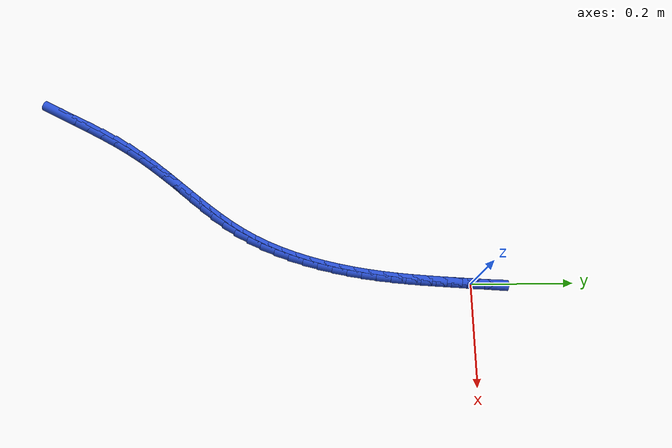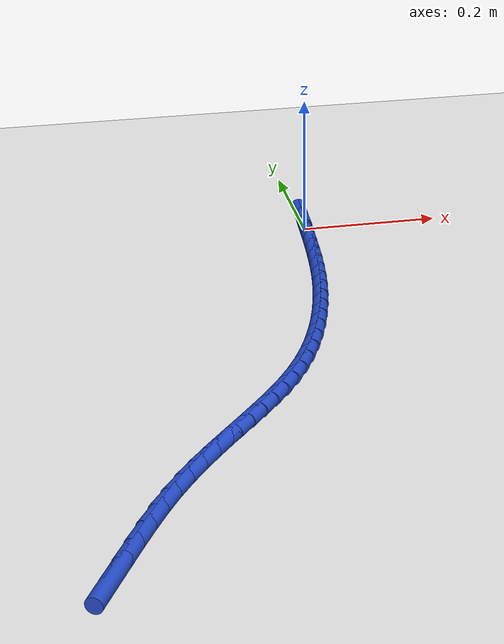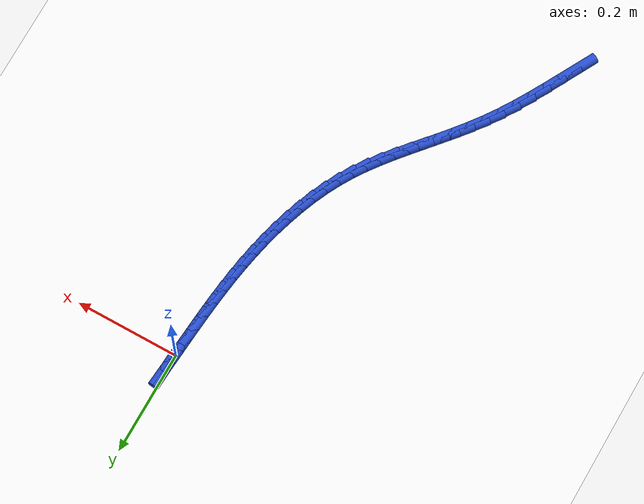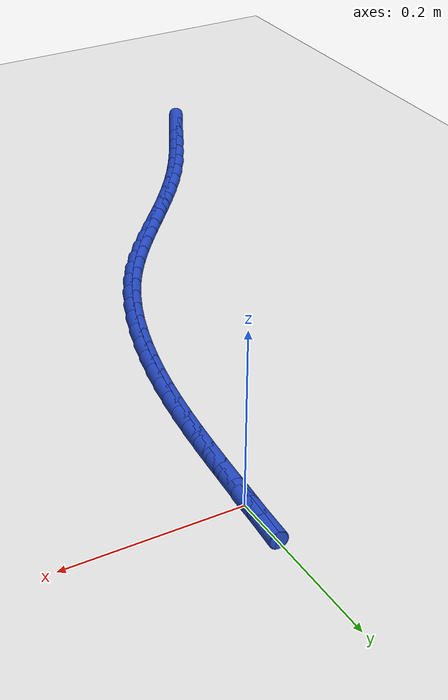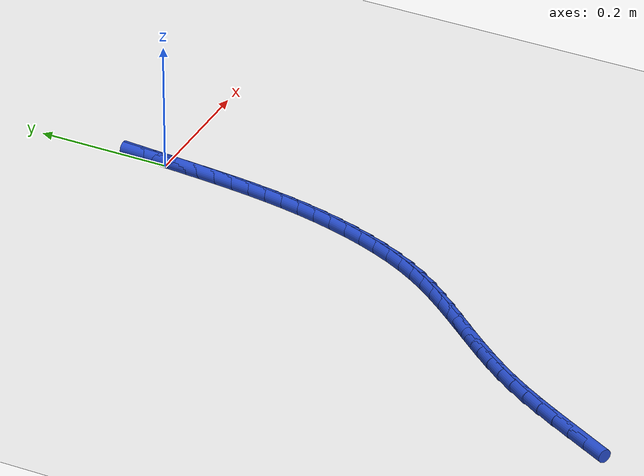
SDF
<sdf version="1.6">
 <world name="default">
  <model name="ground_plane">
   <static>1</static>
   <link name="link">
    <collision name="collision">
     <geometry><plane><normal>0 0 1</normal><size>100 100</size></plane></geometry>
     <surface><friction><ode><mu>100</mu><mu2>50</mu2></ode></friction></surface>
    </collision>
    <visual name="visual">
     <cast_shadows>0</cast_shadows>
     <geometry><plane><normal>0 0 1</normal><size>100 100</size></plane></geometry>
     <material>
      <script><uri>file://media/materials/scripts/gazebo.material</uri><name>Gazebo/WhiteGlow</name></script>
     </material>
    </visual>
   </link>
  </model>
  <model name="line">
   <link name="link_0">
    <pose>3.469446951953614e-18 5.551115123125783e-17 0.01 0 1.57 1.498330290614627</pose>
    <collision name="collision">
     <geometry><cylinder><radius>0.01</radius><length>0.08</length></cylinder></geometry>
    </collision>
    <visual name="visual">
     <material>
      <script><name>Gazebo/Blue</name><uri>file://media/materials/scripts/gazebo.material</uri></script>
     </material>
     <geometry><cylinder><radius>0.01</radius><length>0.08</length></cylinder></geometry>
    </visual>
   </link>
   <link name="link_1">
    <pose>0.0022079323524022247 0.030415160771085865 0.01 0 1.57 1.5155651712762834</pose>
    <collision name="collision">
     <geometry><cylinder><radius>0.01</radius><length>0.08</length></cylinder></geometry>
    </collision>
    <visual name="visual">
     <material>
      <script><name>Gazebo/Blue</name><uri>file://media/materials/scripts/gazebo.material</uri></script>
     </material>
     <geometry><cylinder><radius>0.01</radius><length>0.08</length></cylinder></geometry>
    </visual>
   </link>
   <link name="link_249">
    <pose>-0.3691066035438329 -0.824125573206862 0.01 0 1.57 1.0807454209080034</pose>
    <collision name="collision">
     <geometry><cylinder><radius>0.01</radius><length>0.08</length></cylinder></geometry>
    </collision>
    <visual name="visual">
     <material>
      <script><name>Gazebo/Blue</name><uri>file://media/materials/scripts/gazebo.material</uri></script>
     </material>
     <geometry><cylinder><radius>0.01</radius><length>0.08</length></cylinder></geometry>
    </visual>
   </link>
   <link name="link_250">
    <pose>-0.35312857024812594 -0.7941735114389621 0.01 0 1.57 1.0773993965041233</pose>
    <collision name="collision">
     <geometry><cylinder><radius>0.01</radius><length>0.08</length></cylinder></geometry>
    </collision>
    <visual name="visual">
     <material>
      <script><name>Gazebo/Blue</name><uri>file://media/materials/scripts/gazebo.material</uri></script>
     </material>
     <geometry><cylinder><radius>0.01</radius><length>0.08</length></cylinder></geometry>
    </visual>
   </link>
   <link name="link_251">
    <pose>-0.33707254606856885 -0.764316250610451 0.01 0 1.57 1.0646506611837145</pose>
    <collision name="collision">
     <geometry><cylinder><radius>0.01</radius><length>0.08</length></cylinder></geometry>
    </collision>
    <visual name="visual">
     <material>
      <script><name>Gazebo/Blue</name><uri>file://media/materials/scripts/gazebo.material</uri></script>
     </material>
     <geometry><cylinder><radius>0.01</radius><length>0.08</length></cylinder></geometry>
    </visual>
   </link>
   <link name="link_252">
    <pose>-0.32078174160454054 -0.7349268740370227 0.01 0 1.57 1.04196075727492</pose>
    <collision name="collision">
     <geometry><cylinder><radius>0.01</radius><length>0.08</length></cylinder></geometry>
    </collision>
    <visual name="visual">
     <material>
      <script><name>Gazebo/Blue</name><uri>file://media/materials/scripts/gazebo.material</uri></script>
     </material>
     <geometry><cylinder><radius>0.01</radius><length>0.08</length></cylinder></geometry>
    </visual>
   </link>
   <link name="link_253">
    <pose>-0.30409936745542143 -0.7063784650343732 0.01 0 1.57 1.0083454379524563</pose>
    <collision name="collision">
     <geometry><cylinder><radius>0.01</radius><length>0.08</length></cylinder></geometry>
    </collision>
    <visual name="visual">
     <material>
      <script><name>Gazebo/Blue</name><uri>file://media/materials/scripts/gazebo.material</uri></script>
     </material>
     <geometry><cylinder><radius>0.01</radius><length>0.08</length></cylinder></geometry>
    </visual>
   </link>
   <link name="link_254">
    <pose>-0.28686863422059056 -0.6790441069181956 0.01 0 1.57 0.9656679933872743</pose>
    <collision name="collision">
     <geometry><cylinder><radius>0.01</radius><length>0.08</length></cylinder></geometry>
    </collision>
    <visual name="visual">
     <material>
      <script><name>Gazebo/Blue</name><uri>file://media/materials/scripts/gazebo.material</uri></script>
     </material>
     <geometry><cylinder><radius>0.01</radius><length>0.08</length></cylinder></geometry>
    </visual>
   </link>
   <link name="link_255">
    <pose>-0.26898879774365825 -0.6531946875765466 0.01 0 1.57 0.9270959126102922</pose>
    <collision name="collision">
     <geometry><cylinder><radius>0.01</radius><length>0.08</length></cylinder></geometry>
    </collision>
    <visual name="visual">
     <material>
      <script><name>Gazebo/Blue</name><uri>file://media/materials/scripts/gazebo.material</uri></script>
     </material>
     <geometry><cylinder><radius>0.01</radius><length>0.08</length></cylinder></geometry>
    </visual>
   </link>
   <link name="link_256">
    <pose>-0.25059220076355393 -0.6286760737334046 0.01 0 1.57 0.8971354246118503</pose>
    <collision name="collision">
     <geometry><cylinder><radius>0.01</radius><length>0.08</length></cylinder></geometry>
    </collision>
    <visual name="visual">
     <material>
      <script><name>Gazebo/Blue</name><uri>file://media/materials/scripts/gazebo.material</uri></script>
     </material>
     <geometry><cylinder><radius>0.01</radius><length>0.08</length></cylinder></geometry>
    </visual>
   </link>
   <link name="link_257">
    <pose>-0.23187177196468983 -0.6052236569655286 0.01 0 1.57 0.8766930430158164</pose>
    <collision name="collision">
     <geometry><cylinder><radius>0.01</radius><length>0.08</length></cylinder></geometry>
    </collision>
    <visual name="visual">
     <material>
      <script><name>Gazebo/Blue</name><uri>file://media/materials/scripts/gazebo.material</uri></script>
     </material>
     <geometry><cylinder><radius>0.01</radius><length>0.08</length></cylinder></geometry>
    </visual>
   </link>
   <link name="link_258">
    <pose>-0.21302044015907862 -0.5825728286170028 0.01 0 1.57 0.8664982805174342</pose>
    <collision name="collision">
     <geometry><cylinder><radius>0.01</radius><length>0.08</length></cylinder></geometry>
    </collision>
    <visual name="visual">
     <material>
      <script><name>Gazebo/Blue</name><uri>file://media/materials/scripts/gazebo.material</uri></script>
     </material>
     <geometry><cylinder><radius>0.01</radius><length>0.08</length></cylinder></geometry>
    </visual>
   </link>
   <link name="link_259">
    <pose>-0.19423113415873342 -0.5604589800319127 0.01 0 1.57 0.8671242843665977</pose>
    <collision name="collision">
     <geometry><cylinder><radius>0.01</radius><length>0.08</length></cylinder></geometry>
    </collision>
    <visual name="visual">
     <material>
      <script><name>Gazebo/Blue</name><uri>file://media/materials/scripts/gazebo.material</uri></script>
     </material>
     <geometry><cylinder><radius>0.01</radius><length>0.08</length></cylinder></geometry>
    </visual>
   </link>
   <link name="link_260">
    <pose>-0.17569678277566703 -0.538617502554343 0.01 0 1.57 0.8789923953412879</pose>
    <collision name="collision">
     <geometry><cylinder><radius>0.01</radius><length>0.08</length></cylinder></geometry>
    </collision>
    <visual name="visual">
     <material>
      <script><name>Gazebo/Blue</name><uri>file://media/materials/scripts/gazebo.material</uri></script>
     </material>
     <geometry><cylinder><radius>0.01</radius><length>0.08</length></cylinder></geometry>
    </visual>
   </link>
   <link name="link_261">
    <pose>-0.1576103148218918 -0.516783787528378 0.01 0 1.57 0.9023468856544906</pose>
    <collision name="collision">
     <geometry><cylinder><radius>0.01</radius><length>0.08</length></cylinder></geometry>
    </collision>
    <visual name="visual">
     <material>
      <script><name>Gazebo/Blue</name><uri>file://media/materials/scripts/gazebo.material</uri></script>
     </material>
     <geometry><cylinder><radius>0.01</radius><length>0.08</length></cylinder></geometry>
    </visual>
   </link>
   <link name="link_262">
    <pose>-0.14016465910942186 -0.49469322629810375 0.01 0 1.57 0.9371919004678997</pose>
    <collision name="collision">
     <geometry><cylinder><radius>0.01</radius><length>0.08</length></cylinder></geometry>
    </collision>
    <visual name="visual">
     <material>
      <script><name>Gazebo/Blue</name><uri>file://media/materials/scripts/gazebo.material</uri></script>
     </material>
     <geometry><cylinder><radius>0.01</radius><length>0.08</length></cylinder></geometry>
    </visual>
   </link>
   <link name="link_263">
    <pose>-0.12355274445026954 -0.47208121020760474 0.01 0 1.57 0.9831925289295875</pose>
    <collision name="collision">
     <geometry><cylinder><radius>0.01</radius><length>0.08</length></cylinder></geometry>
    </collision>
    <visual name="visual">
     <material>
      <script><name>Gazebo/Blue</name><uri>file://media/materials/scripts/gazebo.material</uri></script>
     </material>
     <geometry><cylinder><radius>0.01</radius><length>0.08</length></cylinder></geometry>
    </visual>
   </link>
   <link name="link_264">
    <pose>-0.1079674996564477 -0.44868313060096565 0.01 0 1.57 1.0394065361934934</pose>
    <collision name="collision">
     <geometry><cylinder><radius>0.01</radius><length>0.08</length></cylinder></geometry>
    </collision>
    <visual name="visual">
     <material>
      <script><name>Gazebo/Blue</name><uri>file://media/materials/scripts/gazebo.material</uri></script>
     </material>
     <geometry><cylinder><radius>0.01</radius><length>0.08</length></cylinder></geometry>
    </visual>
   </link>
   <link name="link_265">
    <pose>-0.09359943466243048 -0.4242387261722327 0.01 0 1.57 1.0985594454675653</pose>
    <collision name="collision">
     <geometry><cylinder><radius>0.01</radius><length>0.08</length></cylinder></geometry>
    </collision>
    <visual name="visual">
     <material>
      <script><name>Gazebo/Blue</name><uri>file://media/materials/scripts/gazebo.material</uri></script>
     </material>
     <geometry><cylinder><radius>0.01</radius><length>0.08</length></cylinder></geometry>
    </visual>
   </link>
   <link name="link_266">
    <pose>-0.08053853999312464 -0.39866839505117363 0.01 0 1.57 1.1524078998240437</pose>
    <collision name="collision">
     <geometry><cylinder><radius>0.01</radius><length>0.08</length></cylinder></geometry>
    </collision>
    <visual name="visual">
     <material>
      <script><name>Gazebo/Blue</name><uri>file://media/materials/scripts/gazebo.material</uri></script>
     </material>
     <geometry><cylinder><radius>0.01</radius><length>0.08</length></cylinder></geometry>
    </visual>
   </link>
   <link name="link_267">
    <pose>-0.06874034688944712 -0.3721341935555408 0.01 0 1.57 1.2010108530520782</pose>
    <collision name="collision">
     <geometry><cylinder><radius>0.01</radius><length>0.08</length></cylinder></geometry>
    </collision>
    <visual name="visual">
     <material>
      <script><name>Gazebo/Blue</name><uri>file://media/materials/scripts/gazebo.material</uri></script>
     </material>
     <geometry><cylinder><radius>0.01</radius><length>0.08</length></cylinder></geometry>
    </visual>
   </link>
   <link name="link_268">
    <pose>-0.05815099914898497 -0.34481504967217164 0.01 0 1.57 1.244991314086547</pose>
    <collision name="collision">
     <geometry><cylinder><radius>0.01</radius><length>0.08</length></cylinder></geometry>
    </collision>
    <visual name="visual">
     <material>
      <script><name>Gazebo/Blue</name><uri>file://media/materials/scripts/gazebo.material</uri></script>
     </material>
     <geometry><cylinder><radius>0.01</radius><length>0.08</length></cylinder></geometry>
    </visual>
   </link>
   <link name="link_269">
    <pose>-0.04871664056932526 -0.31688989138790324 0.01 0 1.57 1.284928952946745</pose>
    <collision name="collision">
     <geometry><cylinder><radius>0.01</radius><length>0.08</length></cylinder></geometry>
    </collision>
    <visual name="visual">
     <material>
      <script><name>Gazebo/Blue</name><uri>file://media/materials/scripts/gazebo.material</uri></script>
     </material>
     <geometry><cylinder><radius>0.01</radius><length>0.08</length></cylinder></geometry>
    </visual>
   </link>
   <link name="link_270">
    <pose>-0.04038341494805479 -0.2885376466895723 0.01 0 1.57 1.3213522218617355</pose>
    <collision name="collision">
     <geometry><cylinder><radius>0.01</radius><length>0.08</length></cylinder></geometry>
    </collision>
    <visual name="visual">
     <material>
      <script><name>Gazebo/Blue</name><uri>file://media/materials/scripts/gazebo.material</uri></script>
     </material>
     <geometry><cylinder><radius>0.01</radius><length>0.08</length></cylinder></geometry>
    </visual>
   </link>
   <link name="link_271">
    <pose>-0.0330974660827611 -0.2599372435640178 0.01 0 1.57 1.3547381718356262</pose>
    <collision name="collision">
     <geometry><cylinder><radius>0.01</radius><length>0.08</length></cylinder></geometry>
    </collision>
    <visual name="visual">
     <material>
      <script><name>Gazebo/Blue</name><uri>file://media/materials/scripts/gazebo.material</uri></script>
     </material>
     <geometry><cylinder><radius>0.01</radius><length>0.08</length></cylinder></geometry>
    </visual>
   </link>
   <link name="link_272">
    <pose>-0.026804937771030966 -0.2312676099980761 0.01 0 1.57 1.3854708675105896</pose>
    <collision name="collision">
     <geometry><cylinder><radius>0.01</radius><length>0.08</length></cylinder></geometry>
    </collision>
    <visual name="visual">
     <material>
      <script><name>Gazebo/Blue</name><uri>file://media/materials/scripts/gazebo.material</uri></script>
     </material>
     <geometry><cylinder><radius>0.01</radius><length>0.08</length></cylinder></geometry>
    </visual>
   </link>
   <link name="link_273">
    <pose>-0.021447735620890942 -0.20269231709049143 0.01 0 1.57 1.4132389379794836</pose>
    <collision name="collision">
     <geometry><cylinder><radius>0.01</radius><length>0.08</length></cylinder></geometry>
    </collision>
    <visual name="visual">
     <material>
      <script><name>Gazebo/Blue</name><uri>file://media/materials/scripts/gazebo.material</uri></script>
     </material>
     <geometry><cylinder><radius>0.01</radius><length>0.08</length></cylinder></geometry>
    </visual>
   </link>
   <link name="link_274">
    <pose>-0.016923150025517097 -0.1742132747278488 0.01 0 1.57 1.437404049007416</pose>
    <collision name="collision">
     <geometry><cylinder><radius>0.01</radius><length>0.08</length></cylinder></geometry>
    </collision>
    <visual name="visual">
     <material>
      <script><name>Gazebo/Blue</name><uri>file://media/materials/scripts/gazebo.material</uri></script>
     </material>
     <geometry><cylinder><radius>0.01</radius><length>0.08</length></cylinder></geometry>
    </visual>
   </link>
   <link name="link_275">
    <pose>-0.013101753352967267 -0.14573558124171546 0.01 0 1.57 1.4576068112893439</pose>
    <collision name="collision">
     <geometry><cylinder><radius>0.01</radius><length>0.08</length></cylinder></geometry>
    </collision>
    <visual name="visual">
     <material>
      <script><name>Gazebo/Blue</name><uri>file://media/materials/scripts/gazebo.material</uri></script>
     </material>
     <geometry><cylinder><radius>0.01</radius><length>0.08</length></cylinder></geometry>
    </visual>
   </link>
   <link name="link_276">
    <pose>-0.009853756922310648 -0.11716302671898614 0.01 0 1.57 1.4736058925826065</pose>
    <collision name="collision">
     <geometry><cylinder><radius>0.01</radius><length>0.08</length></cylinder></geometry>
    </collision>
    <visual name="visual">
     <material>
      <script><name>Gazebo/Blue</name><uri>file://media/materials/scripts/gazebo.material</uri></script>
     </material>
     <geometry><cylinder><radius>0.01</radius><length>0.08</length></cylinder></geometry>
    </visual>
   </link>
   <link name="link_277">
    <pose>-0.007049372052616427 -0.0883994012465554 0.01 0 1.57 1.4852744838600818</pose>
    <collision name="collision">
     <geometry><cylinder><radius>0.01</radius><length>0.08</length></cylinder></geometry>
    </collision>
    <visual name="visual">
     <material>
      <script><name>Gazebo/Blue</name><uri>file://media/materials/scripts/gazebo.material</uri></script>
     </material>
     <geometry><cylinder><radius>0.01</radius><length>0.08</length></cylinder></geometry>
    </visual>
   </link>
   <link name="link_278">
    <pose>-0.004558810062953797 -0.0593484949113179 0.01 0 1.57 1.4925944874432335</pose>
    <collision name="collision">
     <geometry><cylinder><radius>0.01</radius><length>0.08</length></cylinder></geometry>
    </collision>
    <visual name="visual">
     <material>
      <script><name>Gazebo/Blue</name><uri>file://media/materials/scripts/gazebo.material</uri></script>
     </material>
     <geometry><cylinder><radius>0.01</radius><length>0.08</length></cylinder></geometry>
    </visual>
   </link>
   <link name="link_279">
    <pose>-0.0022522822723918794 -0.029914097800167325 0.01 0 1.57 1.495646450442283</pose>
    <collision name="collision">
     <geometry><cylinder><radius>0.01</radius><length>0.08</length></cylinder></geometry>
    </collision>
    <visual name="visual">
     <material>
      <script><name>Gazebo/Blue</name><uri>file://media/materials/scripts/gazebo.material</uri></script>
     </material>
     <geometry><cylinder><radius>0.01</radius><length>0.08</length></cylinder></geometry>
    </visual>
   </link>
   <link name="link_280">
    <pose>-6.5052130349130266e-18 -8.326672684688674e-17 0.01 0 1.57 1.49459699359606</pose>
    <collision name="collision">
     <geometry><cylinder><radius>0.01</radius><length>0.08</length></cylinder></geometry>
    </collision>
    <visual name="visual">
     <material>
      <script><name>Gazebo/Blue</name><uri>file://media/materials/scripts/gazebo.material</uri></script>
     </material>
     <geometry><cylinder><radius>0.01</radius><length>0.08</length></cylinder></geometry>
    </visual>
   </link>
   <link name="link_281">
    <pose>0.0023278254351527037 0.030490008402290075 0.01 0 1.57 1.4896850650293931</pose>
    <collision name="collision">
     <geometry><cylinder><radius>0.01</radius><length>0.08</length></cylinder></geometry>
    </collision>
    <visual name="visual">
     <material>
      <script><name>Gazebo/Blue</name><uri>file://media/materials/scripts/gazebo.material</uri></script>
     </material>
     <geometry><cylinder><radius>0.01</radius><length>0.08</length></cylinder></geometry>
    </visual>
   </link>
  </model>
 </world>
</sdf>
